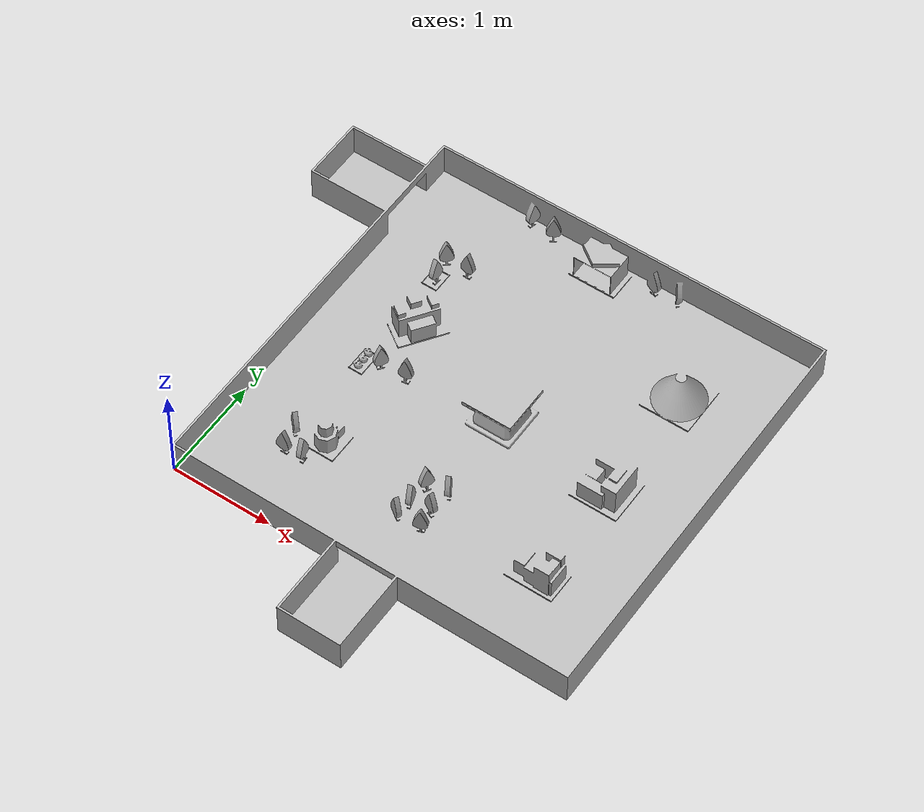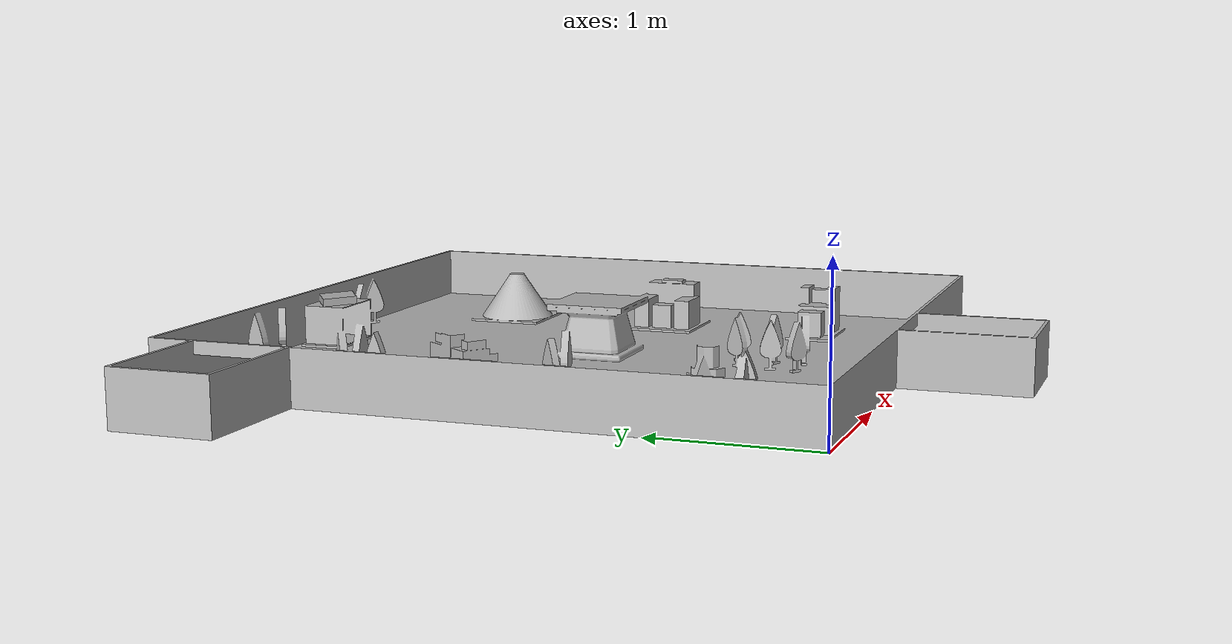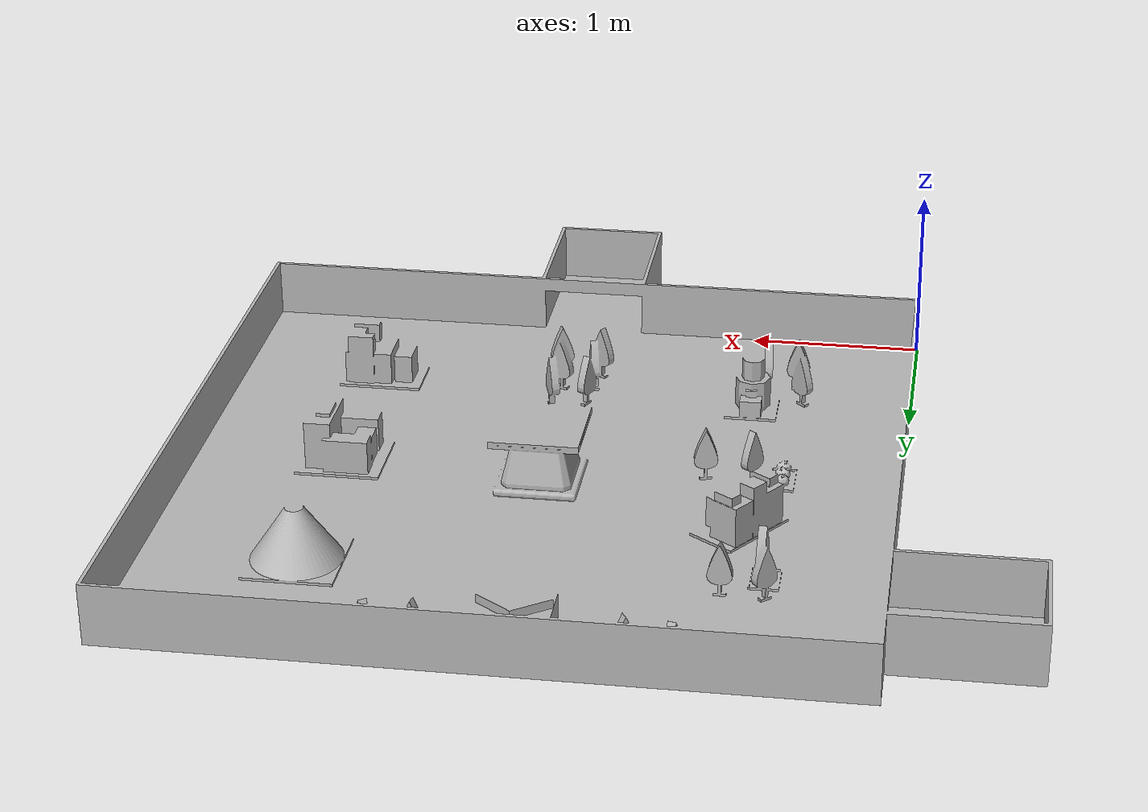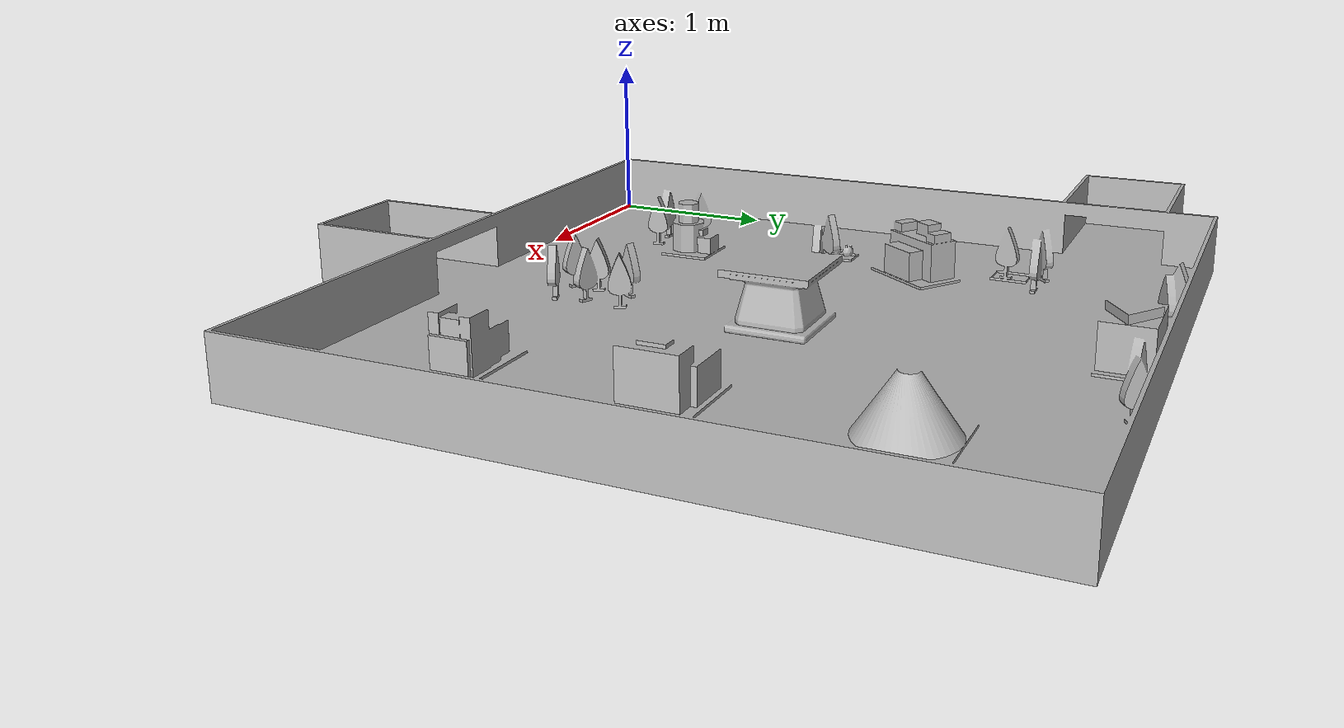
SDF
<?xml version="1.0"?>
<sdf version="1.6">
  <model name="ros_sandbox">
    <static>true</static>
    <link name="sandbox_environment">
      <visual name="textured_environment">
        <geometry><mesh><uri>model://ros_sandbox/meshes/ros_sandbox_visual.obj</uri><scale>1 1 1</scale></mesh></geometry>
        <cast_shadows>true</cast_shadows>
      </visual>
      <collision name="environment_collision">
        <geometry><mesh><uri>model://ros_sandbox/meshes/ros_sandbox_collision.stl</uri><scale>1 1 1</scale></mesh></geometry>
        <surface><friction><ode><mu>1.0</mu><mu2>1.0</mu2></ode></friction></surface>
      </collision>
    </link>
  </model>
</sdf>
